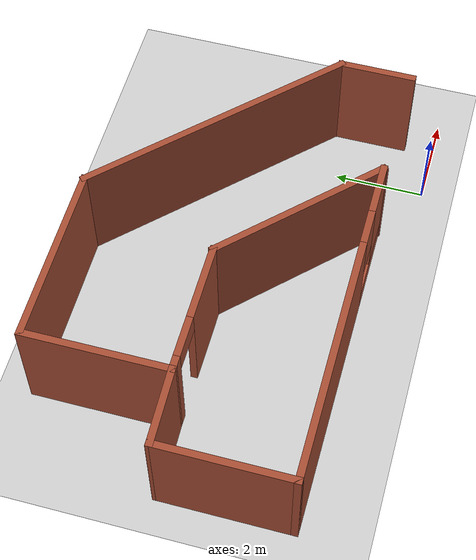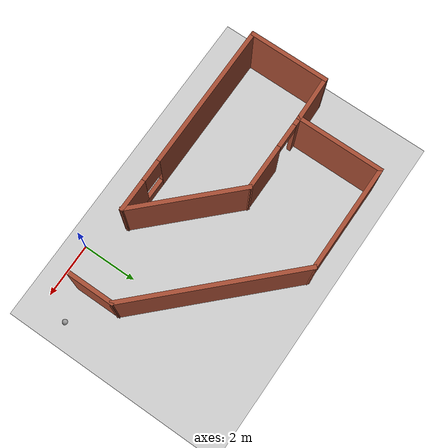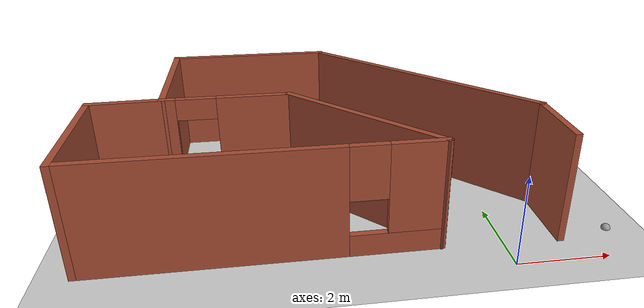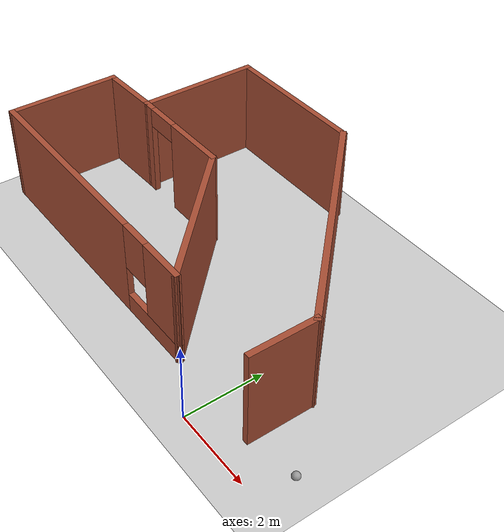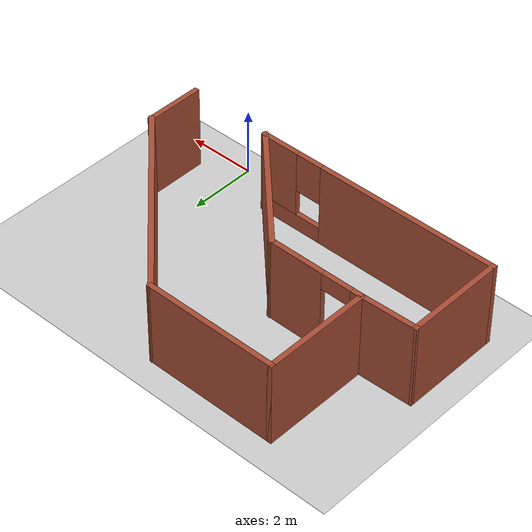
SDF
<sdf version="1.6">
 <world name="default">
  <plugin name="hello" filename="libhello.so"/>
  <light name="sun" type="directional">
   <pose>0 0 10 0 -0 0</pose>
   <diffuse>0.8 0.8 0.8 1</diffuse>
   <specular>0.1 0.1 0.1 1</specular>
   <attenuation>
    <range>1000</range>
    <constant>0.9</constant>
    <linear>0.01</linear>
    <quadratic>0.001</quadratic>
   </attenuation>
   <direction>-0.5 0.5 -1</direction>
  </light>
  <model name="ground_plane">
   <static>1</static>
   <link name="link">
    <collision name="collision">
     <geometry><plane><normal>0 0 1</normal><size>100 100</size></plane></geometry>
     <surface><friction><ode><mu>100</mu><mu2>50</mu2></ode></friction></surface>
    </collision>
    <visual name="visual">
     <cast_shadows>0</cast_shadows>
     <geometry><plane><normal>0 0 1</normal><size>100 100</size></plane></geometry>
     <material>
      <script><uri>file://media/materials/scripts/gazebo.material</uri><name>Gazebo/Grey</name></script>
     </material>
    </visual>
   </link>
  </model>
  <gravity>0 0 -9.8</gravity>
  <magnetic_field>6e-06 2.3e-05 -4.2e-05</magnetic_field>
  <atmosphere type="adiabatic"/>
  <physics name="default_physics" default="0" type="ode">
   <max_step_size>0.001</max_step_size>
   <real_time_factor>1</real_time_factor>
   <real_time_update_rate>1000</real_time_update_rate>
  </physics>
  <scene><ambient>0.4 0.4 0.4 1</ambient><background>0.7 0.7 0.7 1</background><shadows>1</shadows></scene>
  <spherical_coordinates>
   <surface_model>EARTH_WGS84</surface_model>
   <latitude_deg>0</latitude_deg>
   <longitude_deg>0</longitude_deg>
   <elevation>0</elevation>
   <heading_deg>0</heading_deg>
  </spherical_coordinates>
  <model name="building2">
   <pose>-3.71805 3.77176 0 0 -0 0</pose>
   <link name="Wall_0">
    <collision name="Wall_0_Collision">
     <geometry><box><size>3 0.15 2.5</size></box></geometry>
     <pose>0 0 1.25 0 -0 0</pose>
    </collision>
    <visual name="Wall_0_Visual">
     <pose>0 0 1.25 0 -0 0</pose>
     <geometry><box><size>3 0.15 2.5</size></box></geometry>
     <material>
      <script><uri>file://media/materials/scripts/gazebo.material</uri><name>Gazebo/Bricks</name></script>
      <ambient>1 1 1 1</ambient>
     </material>
     <meta><layer>0</layer></meta>
    </visual>
    <pose>-4.98489 -1.54461 0 0 0 -1.5708</pose>
   </link>
   <link name="Wall_1">
    <pose>-1.3099 -2.96961 0 0 -0 0</pose>
    <visual name="Wall_1_Visual_0">
     <pose>-1.00946 0 1.25 0 -0 0</pose>
     <geometry><box><size>5.48109 0.15 2.5</size></box></geometry>
     <material>
      <script><uri>file://media/materials/scripts/gazebo.material</uri><name>Gazebo/Bricks</name></script>
      <ambient>1 1 1 1</ambient>
     </material>
     <meta><layer>0</layer></meta>
    </visual>
    <collision name="Wall_1_Collision_0">
     <geometry><box><size>5.48109 0.15 2.5</size></box></geometry>
     <pose>-1.00946 0 1.25 0 -0 0</pose>
    </collision>
    <visual name="Wall_1_Visual_1">
     <pose>2.74054 0 0.25 0 -0 0</pose>
     <geometry><box><size>2.01891 0.15 0.5</size></box></geometry>
     <material>
      <script><uri>file://media/materials/scripts/gazebo.material</uri><name>Gazebo/Bricks</name></script>
      <ambient>1 1 1 1</ambient>
     </material>
     <meta><layer>0</layer></meta>
    </visual>
    <collision name="Wall_1_Collision_1">
     <geometry><box><size>2.01891 0.15 0.5</size></box></geometry>
     <pose>2.74054 0 0.25 0 -0 0</pose>
    </collision>
    <visual name="Wall_1_Visual_2">
     <pose>3.14054 0 1.5 0 -0 0</pose>
     <geometry><box><size>1.21891 0.15 2</size></box></geometry>
     <material>
      <script><uri>file://media/materials/scripts/gazebo.material</uri><name>Gazebo/Bricks</name></script>
      <ambient>1 1 1 1</ambient>
     </material>
     <meta><layer>0</layer></meta>
    </visual>
    <collision name="Wall_1_Collision_2">
     <geometry><box><size>1.21891 0.15 2</size></box></geometry>
     <pose>3.14054 0 1.5 0 -0 0</pose>
    </collision>
    <visual name="Wall_1_Visual_3">
     <pose>2.13109 0 1.9 0 -0 0</pose>
     <geometry><box><size>0.8 0.15 1.2</size></box></geometry>
     <material>
      <script><uri>file://media/materials/scripts/gazebo.material</uri><name>Gazebo/Bricks</name></script>
      <ambient>1 1 1 1</ambient>
     </material>
     <meta><layer>0</layer></meta>
    </visual>
    <collision name="Wall_1_Collision_3">
     <geometry><box><size>0.8 0.15 1.2</size></box></geometry>
     <pose>2.13109 0 1.9 0 -0 0</pose>
    </collision>
   </link>
   <link name="Wall_2">
    <collision name="Wall_2_Collision">
     <geometry><box><size>4.25 0.15 2.5</size></box></geometry>
     <pose>0 0 1.25 0 -0 0</pose>
    </collision>
    <visual name="Wall_2_Visual">
     <pose>0 0 1.25 0 -0 0</pose>
     <geometry><box><size>4.25 0.15 2.5</size></box></geometry>
     <material>
      <script><uri>file://media/materials/scripts/gazebo.material</uri><name>Gazebo/Bricks</name></script>
      <ambient>1 1 1 1</ambient>
     </material>
     <meta><layer>0</layer></meta>
    </visual>
    <pose>0.915536 -1.52004 0 0 -0 2.35619</pose>
   </link>
   <link name="Wall_3">
    <pose>-1.95903 -0.070469 0 0 -0 3.14159</pose>
    <visual name="Wall_3_Visual_0">
     <pose>-0.634678 0 1.25 0 -0 0</pose>
     <geometry><box><size>1.73064 0.15 2.5</size></box></geometry>
     <material>
      <script><uri>file://media/materials/scripts/gazebo.material</uri><name>Gazebo/Bricks</name></script>
      <ambient>1 1 1 1</ambient>
     </material>
     <meta><layer>0</layer></meta>
    </visual>
    <collision name="Wall_3_Collision_0">
     <geometry><box><size>1.73064 0.15 2.5</size></box></geometry>
     <pose>-0.634678 0 1.25 0 -0 0</pose>
    </collision>
    <visual name="Wall_3_Visual_1">
     <pose>1.31532 0 1.25 0 -0 0</pose>
     <geometry><box><size>0.369355 0.15 2.5</size></box></geometry>
     <material>
      <script><uri>file://media/materials/scripts/gazebo.material</uri><name>Gazebo/Bricks</name></script>
      <ambient>1 1 1 1</ambient>
     </material>
     <meta><layer>0</layer></meta>
    </visual>
    <collision name="Wall_3_Collision_1">
     <geometry><box><size>0.369355 0.15 2.5</size></box></geometry>
     <pose>1.31532 0 1.25 0 -0 0</pose>
    </collision>
    <visual name="Wall_3_Visual_2">
     <pose>0.680645 0 2.25 0 -0 0</pose>
     <geometry><box><size>0.9 0.15 0.5</size></box></geometry>
     <material>
      <script><uri>file://media/materials/scripts/gazebo.material</uri><name>Gazebo/Bricks</name></script>
      <ambient>1 1 1 1</ambient>
     </material>
     <meta><layer>0</layer></meta>
    </visual>
    <collision name="Wall_3_Collision_2">
     <geometry><box><size>0.9 0.15 0.5</size></box></geometry>
     <pose>0.680645 0 2.25 0 -0 0</pose>
    </collision>
   </link>
   <link name="Wall_4">
    <collision name="Wall_4_Collision">
     <geometry><box><size>3.25 0.15 2.5</size></box></geometry>
     <pose>0 0 1.25 0 -0 0</pose>
    </collision>
    <visual name="Wall_4_Visual">
     <pose>0 0 1.25 0 -0 0</pose>
     <geometry><box><size>3.25 0.15 2.5</size></box></geometry>
     <material>
      <script><uri>file://media/materials/scripts/gazebo.material</uri><name>Gazebo/Bricks</name></script>
      <ambient>1 1 1 1</ambient>
     </material>
     <meta><layer>0</layer></meta>
    </visual>
    <pose>-3.38403 1.47953 0 0 -0 1.5708</pose>
   </link>
   <link name="Wall_5">
    <collision name="Wall_5_Collision">
     <geometry><box><size>4 0.15 2.5</size></box></geometry>
     <pose>0 0 1.25 0 -0 0</pose>
    </collision>
    <visual name="Wall_5_Visual">
     <pose>0 0 1.25 0 -0 0</pose>
     <geometry><box><size>4 0.15 2.5</size></box></geometry>
     <material>
      <script><uri>file://media/materials/scripts/gazebo.material</uri><name>Gazebo/Bricks</name></script>
      <ambient>1 1 1 1</ambient>
     </material>
     <meta><layer>0</layer></meta>
    </visual>
    <pose>-1.45903 3.02953 0 0 -0 0</pose>
   </link>
   <link name="Wall_6">
    <collision name="Wall_6_Collision">
     <geometry><box><size>6.5 0.15 2.5</size></box></geometry>
     <pose>0 0 1.25 0 -0 0</pose>
    </collision>
    <visual name="Wall_6_Visual">
     <pose>0 0 1.25 0 -0 0</pose>
     <geometry><box><size>6.5 0.15 2.5</size></box></geometry>
     <material>
      <script><uri>file://media/materials/scripts/gazebo.material</uri><name>Gazebo/Bricks</name></script>
      <ambient>1 1 1 1</ambient>
     </material>
     <meta><layer>0</layer></meta>
    </visual>
    <pose>2.71103 0.784467 0 0 0 -0.785398</pose>
   </link>
   <link name="Wall_7">
    <collision name="Wall_7_Collision">
     <geometry><box><size>1.75 0.15 2.5</size></box></geometry>
     <pose>0 0 1.25 0 -0 0</pose>
    </collision>
    <visual name="Wall_7_Visual">
     <pose>0 0 1.25 0 -0 0</pose>
     <geometry><box><size>1.75 0.15 2.5</size></box></geometry>
     <material>
      <script><uri>file://media/materials/scripts/gazebo.material</uri><name>Gazebo/Bricks</name></script>
      <ambient>1 1 1 1</ambient>
     </material>
     <meta><layer>0</layer></meta>
    </visual>
    <pose>4.9561 -2.2606 0 0 0 -1.5708</pose>
   </link>
   <link name="Wall_9">
    <collision name="Wall_9_Collision">
     <geometry><box><size>1.75162 0.15 2.5</size></box></geometry>
     <pose>0 0 1.25 0 -0 0</pose>
    </collision>
    <visual name="Wall_9_Visual">
     <pose>0 0 1.25 0 -0 0</pose>
     <geometry><box><size>1.75162 0.15 2.5</size></box></geometry>
     <material>
      <script><uri>file://media/materials/scripts/gazebo.material</uri><name>Gazebo/Bricks</name></script>
      <ambient>1 1 1 1</ambient>
     </material>
     <meta><layer>0</layer></meta>
    </visual>
    <pose>-4.18446 -0.095038 0 0 -0 0.030685</pose>
   </link>
   <static>1</static>
  </model>
  <model name="my_ball">
   <link name="link_0">
    <inertial>
     <mass>1</mass>
     <inertia><ixx>0.1</ixx><ixy>0</ixy><ixz>0</ixz><iyy>0.1</iyy><iyz>0</iyz><izz>0.1</izz></inertia>
    </inertial>
    <visual name="visual">
     <geometry><sphere><radius>0.1</radius></sphere></geometry>
     <material>
      <lighting>1</lighting>
      <script><uri>file://media/materials/scripts/gazebo.material</uri><name>Gazebo/Grey</name></script>
      <shader type="pixel"><normal_map>__default__</normal_map></shader>
      <ambient>1 1 1 1</ambient>
      <diffuse>1 1 1 1</diffuse>
      <specular>1 1 1 1</specular>
      <emissive>1 1 1 1</emissive>
     </material>
    </visual>
    <collision name="collision">
     <geometry><sphere><radius>0.1</radius></sphere></geometry>
     <surface>
      <friction>
       <ode><mu>1</mu><mu2>1</mu2><fdir1>0 0 0</fdir1><slip1>0</slip1><slip2>0</slip2></ode>
       <torsional>
        <coefficient>1</coefficient>
        <patch_radius>0</patch_radius>
        <surface_radius>0</surface_radius>
        <use_patch_radius>1</use_patch_radius>
        <ode><slip>0</slip></ode>
       </torsional>
      </friction>
      <bounce><restitution_coefficient>0</restitution_coefficient><threshold>1e+06</threshold></bounce>
      <contact>
       <collide_without_contact>0</collide_without_contact>
       <collide_without_contact_bitmask>1</collide_without_contact_bitmask>
       <collide_bitmask>1</collide_bitmask>
       <ode>
        <soft_cfm>0</soft_cfm>
        <soft_erp>0.2</soft_erp>
        <kp>1e+13</kp>
        <kd>1</kd>
        <max_vel>0.01</max_vel>
        <min_depth>0</min_depth>
       </ode>
       <bullet>
        <split_impulse>1</split_impulse>
        <split_impulse_penetration_threshold>-0.01</split_impulse_penetration_threshold>
        <soft_cfm>0</soft_cfm>
        <soft_erp>0.2</soft_erp>
        <kp>1e+13</kp>
        <kd>1</kd>
       </bullet>
      </contact>
     </surface>
    </collision>
   </link>
   <static>0</static>
   <pose>2.45127 0.959944 0 0 -0 0</pose>
  </model>
 </world>
</sdf>
